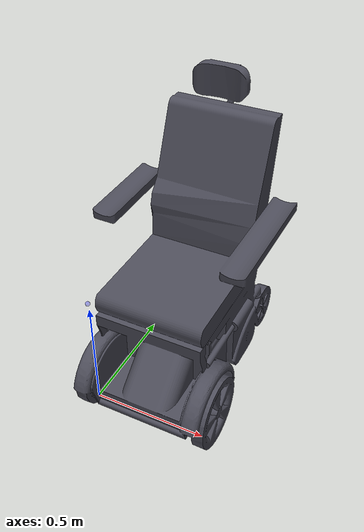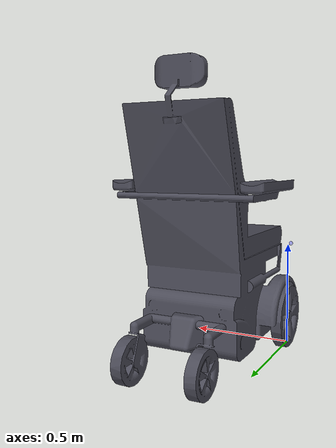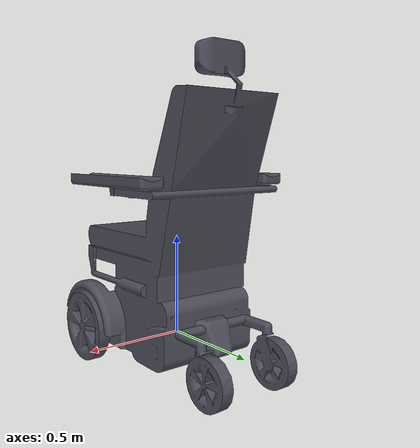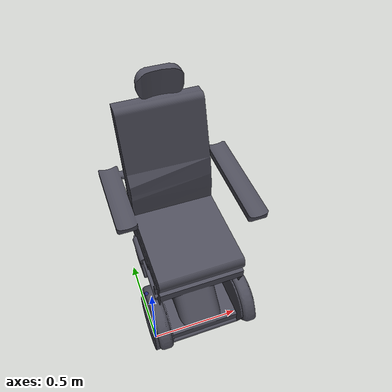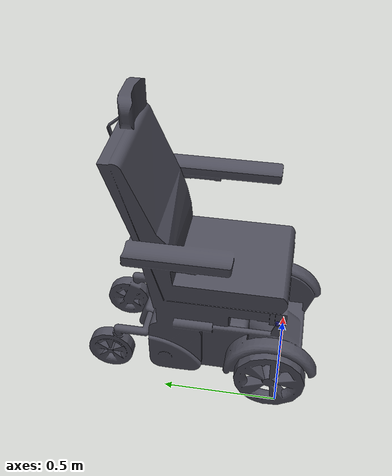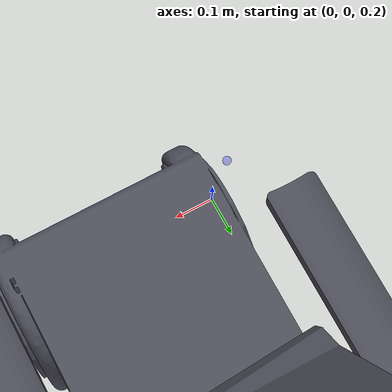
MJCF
<mujoco model="wheelchair">

  <asset>
    <material name="wheelchair_metal" rgba="0.3 0.3 0.35 1" specular="0.4" shininess="0.3"/>
    <mesh name="wheelchair" file="wheelchair.stl"/>
  </asset>

  <worldbody>
    <!-- z=0.4612 from physics drop test (convex hull on floor plane). -->
    <body name="wheelchair_base" pos="0 0 0.4612">
      <geom name="wheelchair_visual" type="mesh" mesh="wheelchair" material="wheelchair_metal"
            contype="0" conaffinity="0" group="2"/>
      <geom name="wheelchair_collision" type="mesh" mesh="wheelchair"
            contype="1" conaffinity="1" group="3"
            rgba="0.3 0.5 0.3 0.2"/>

      <site name="arm_attachment_site" pos="-0.02 0.02 0.05" size="0.01" rgba="0 0 1 0.3"/>
    </body>
  </worldbody>
</mujoco>
